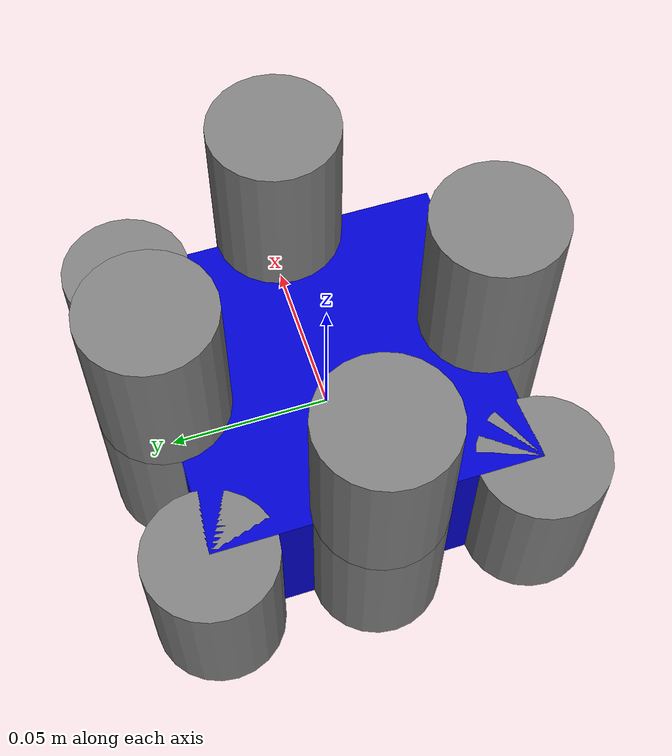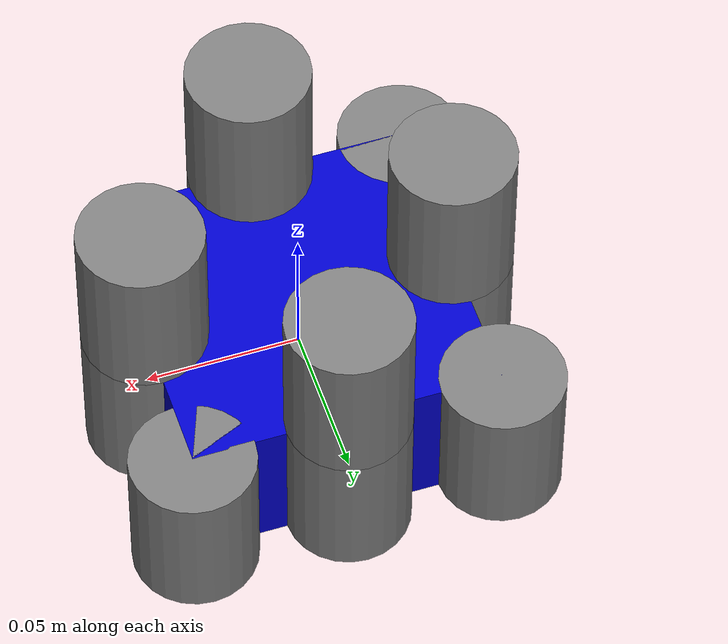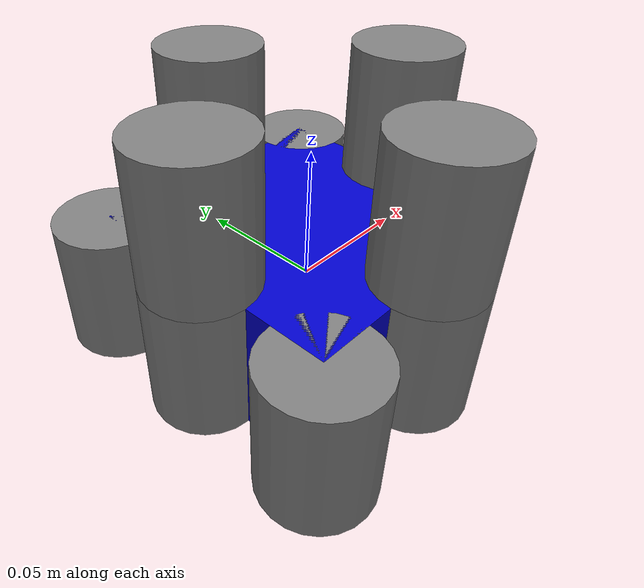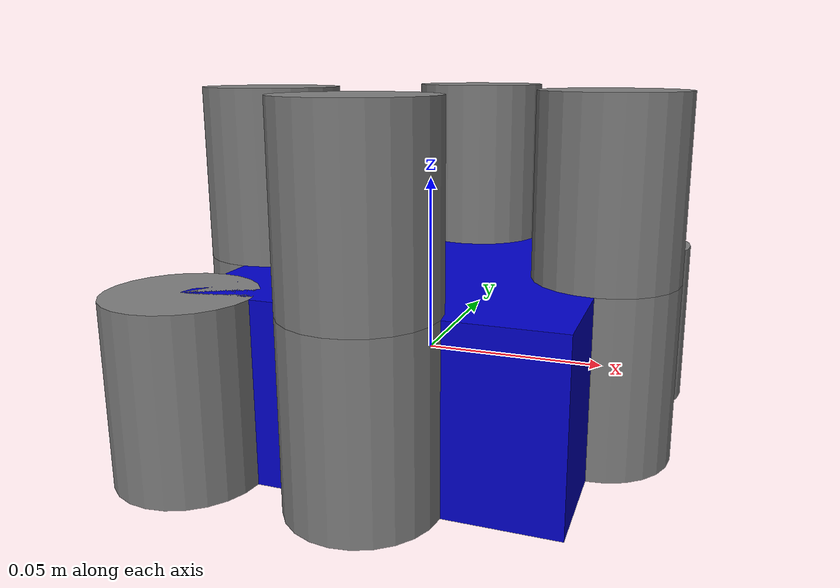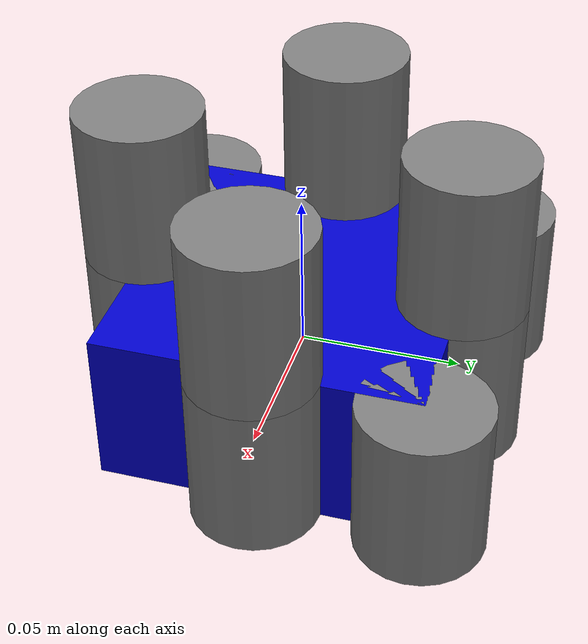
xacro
<?xml version="1.0"?>
<robot xmlns:xacro="http://www.ros.org/wiki/xacro" name="hybrid_robot">

  <!-- Define servo joint names and IDs -->
  <xacro:property name="servo_1_id" value="1" />
  <xacro:property name="servo_2_id" value="2" />
  <xacro:property name="servo_3_id" value="3" />
  <xacro:property name="servo_4_id" value="4" />
  <xacro:property name="servo_5_id" value="5" />
  <xacro:property name="servo_6_id" value="6" />
  <xacro:property name="servo_7_id" value="7" />
  <xacro:property name="servo_8_id" value="8" />
  <xacro:property name="servo_9_id" value="9" />
  <xacro:property name="servo_10_id" value="10" />
  <xacro:property name="servo_11_id" value="11" />
  <xacro:property name="servo_12_id" value="12" />

  <!-- Base link -->
  <link name="base_link">
    <visual>
      <geometry>
        <box size="0.1 0.1 0.05"/>
      </geometry>
      <material name="blue">
        <color rgba="0 0 0.8 1"/>
      </material>
    </visual>
  </link>

  <!-- Servo 1 link and joint (Position) -->
  <link name="servo_link_1">
    <visual>
      <geometry>
        <cylinder radius="0.02" length="0.05"/>
      </geometry>
      <material name="gray">
        <color rgba="0.5 0.5 0.5 1"/>
      </material>
    </visual>
  </link>

  <joint name="servo_joint_1" type="revolute">
    <parent link="base_link"/>
    <child link="servo_link_1"/>
    <origin xyz="0.05 0 0" rpy="0 0 0"/>
    <axis xyz="0 0 1"/>
    <limit lower="-3.14" upper="3.14" effort="10" velocity="5"/>
  </joint>

  <!-- Servo 2 link and joint (Position) -->
  <link name="servo_link_2">
    <visual>
      <geometry>
        <cylinder radius="0.02" length="0.05"/>
      </geometry>
      <material name="gray">
        <color rgba="0.5 0.5 0.5 1"/>
      </material>
    </visual>
  </link>

  <joint name="servo_joint_2" type="revolute">
    <parent link="base_link"/>
    <child link="servo_link_2"/>
    <origin xyz="0 0.05 0" rpy="0 0 0"/>
    <axis xyz="0 0 1"/>
    <limit lower="-3.14" upper="3.14" effort="10" velocity="5"/>
  </joint>

  <!-- Servo 3 link and joint (Velocity) -->
  <link name="servo_link_3">
    <visual>
      <geometry>
        <cylinder radius="0.02" length="0.05"/>
      </geometry>
      <material name="gray">
        <color rgba="0.5 0.5 0.5 1"/>
      </material>
    </visual>
  </link>

  <joint name="servo_joint_3" type="revolute">
    <parent link="base_link"/>
    <child link="servo_link_3"/>
    <origin xyz="-0.05 0 0" rpy="0 0 0"/>
    <axis xyz="0 0 1"/>
    <limit lower="-3.14" upper="3.14" effort="10" velocity="5"/>
  </joint>

  <!-- Servo 4 link and joint (Position) -->
  <link name="servo_link_4">
    <visual>
      <geometry>
        <cylinder radius="0.02" length="0.05"/>
      </geometry>
      <material name="gray">
        <color rgba="0.5 0.5 0.5 1"/>
      </material>
    </visual>
  </link>

  <joint name="servo_joint_4" type="revolute">
    <parent link="base_link"/>
    <child link="servo_link_4"/>
    <origin xyz="0 -0.05 0.05" rpy="0 0 0"/>
    <axis xyz="0 0 1"/>
    <limit lower="-3.14" upper="3.14" effort="10" velocity="5"/>
  </joint>

  <!-- Servo 5 link and joint (Position) -->
  <link name="servo_link_5">
    <visual>
      <geometry>
        <cylinder radius="0.02" length="0.05"/>
      </geometry>
      <material name="gray">
        <color rgba="0.5 0.5 0.5 1"/>
      </material>
    </visual>
  </link>

  <joint name="servo_joint_5" type="revolute">
    <parent link="base_link"/>
    <child link="servo_link_5"/>
    <origin xyz="0 0.05 0.05" rpy="0 0 0"/>
    <axis xyz="0 0 1"/>
    <limit lower="-3.14" upper="3.14" effort="10" velocity="5"/>
  </joint>

  <!-- Servo 6 link and joint (Velocity) -->
  <link name="servo_link_6">
    <visual>
      <geometry>
        <cylinder radius="0.02" length="0.05"/>
      </geometry>
      <material name="gray">
        <color rgba="0.5 0.5 0.5 1"/>
      </material>
    </visual>
  </link>

  <joint name="servo_joint_6" type="revolute">
    <parent link="base_link"/>
    <child link="servo_link_6"/>
    <origin xyz="0.05 0.05 0" rpy="0 0 0"/>
    <axis xyz="0 0 1"/>
    <limit lower="-3.14" upper="3.14" effort="10" velocity="5"/>
  </joint>

  <!-- Servo 7 link and joint (Position) -->
  <link name="servo_link_7">
    <visual>
      <geometry>
        <cylinder radius="0.02" length="0.05"/>
      </geometry>
      <material name="gray">
        <color rgba="0.5 0.5 0.5 1"/>
      </material>
    </visual>
  </link>

  <joint name="servo_joint_7" type="revolute">
    <parent link="base_link"/>
    <child link="servo_link_7"/>
    <origin xyz="0.05 0 0.05" rpy="0 0 0"/>
    <axis xyz="0 0 1"/>
    <limit lower="-3.14" upper="3.14" effort="10" velocity="5"/>
  </joint>

  <!-- Servo 8 link and joint (Position) -->
  <link name="servo_link_8">
    <visual>
      <geometry>
        <cylinder radius="0.02" length="0.05"/>
      </geometry>
      <material name="gray">
        <color rgba="0.5 0.5 0.5 1"/>
      </material>
    </visual>
  </link>

  <joint name="servo_joint_8" type="revolute">
    <parent link="base_link"/>
    <child link="servo_link_8"/>
    <origin xyz="0 0.05 0.05" rpy="0 0 0"/>
    <axis xyz="0 0 1"/>
    <limit lower="-3.14" upper="3.14" effort="10" velocity="5"/>
  </joint>

  <!-- Servo 9 link and joint (Velocity) -->
  <link name="servo_link_9">
    <visual>
      <geometry>
        <cylinder radius="0.02" length="0.05"/>
      </geometry>
      <material name="gray">
        <color rgba="0.5 0.5 0.5 1"/>
      </material>
    </visual>
  </link>

  <joint name="servo_joint_9" type="revolute">
    <parent link="base_link"/>
    <child link="servo_link_9"/>
    <origin xyz="0 -0.05 0" rpy="0 0 0"/>
    <axis xyz="0 0 -1"/>
    <limit lower="-3.14" upper="3.14" effort="10" velocity="5"/>
  </joint>

  <!-- Servo 10 link and joint (Position) -->
  <link name="servo_link_10">
    <visual>
      <geometry>
        <cylinder radius="0.02" length="0.05"/>
      </geometry>
      <material name="gray">
        <color rgba="0.5 0.5 0.5 1"/>
      </material>
    </visual>
  </link>

  <joint name="servo_joint_10" type="revolute">
    <parent link="base_link"/>
    <child link="servo_link_10"/>
    <origin xyz="-0.05 -0.05 0" rpy="0 0 0"/>
    <axis xyz="0 0 1"/>
    <limit lower="-3.14" upper="3.14" effort="10" velocity="5"/>
  </joint>

  <!-- Servo 11 link and joint (Position) -->
  <link name="servo_link_11">
    <visual>
      <geometry>
        <cylinder radius="0.02" length="0.05"/>
      </geometry>
      <material name="gray">
        <color rgba="0.5 0.5 0.5 1"/>
      </material>
    </visual>
  </link>

  <joint name="servo_joint_11" type="revolute">
    <parent link="base_link"/>
    <child link="servo_link_11"/>
    <origin xyz="-0.05 0 0.05" rpy="0 0 0"/>
    <axis xyz="0 0 1"/>
    <limit lower="-3.14" upper="3.14" effort="10" velocity="5"/>
  </joint>

  <!-- Servo 12 link and joint (Velocity) -->
  <link name="servo_link_12">
    <visual>
      <geometry>
        <cylinder radius="0.02" length="0.05"/>
      </geometry>
      <material name="gray">
        <color rgba="0.5 0.5 0.5 1"/>
      </material>
    </visual>
  </link>

  <joint name="servo_joint_12" type="revolute">
    <parent link="base_link"/>
    <child link="servo_link_12"/>
    <origin xyz="-0.05 0.05 0" rpy="0 0 0"/>
    <axis xyz="0 0 -1"/>
    <limit lower="-3.14" upper="3.14" effort="10" velocity="5"/>
  </joint>

  <!-- ROS 2 Control hardware interface -->
  <ros2_control name="ST3215HardwareSystem" type="system">
    <hardware>
      <plugin>ugv_motor_driver/ST3215HardwareInterface</plugin>
      <param name="serial_port">/dev/ttyUSB0</param>
      <param name="servo_ids">1,2,3,4,5,6,7,8,9,10,11,12</param>
    </hardware>

    <!-- Position control servos: 1, 2, 4, 5, 7, 8 -->
    <joint name="servo_joint_1">
      <command_interface name="position">
        <param name="min">-3.14</param>
        <param name="max">3.14</param>
      </command_interface>
      <state_interface name="position"/>
      <state_interface name="velocity"/>
      <state_interface name="effort"/>
    </joint>

    <joint name="servo_joint_2">
      <command_interface name="position">
        <param name="min">-3.14</param>
        <param name="max">3.14</param>
      </command_interface>
      <state_interface name="position"/>
      <state_interface name="velocity"/>
      <state_interface name="effort"/>
    </joint>

    <!-- Velocity control: servo 3 -->
    <joint name="servo_joint_3">
      <command_interface name="velocity">
        <param name="min">-255</param>
        <param name="max">255</param>
      </command_interface>
      <state_interface name="position"/>
      <state_interface name="velocity"/>
      <state_interface name="effort"/>
    </joint>

    <joint name="servo_joint_4">
      <command_interface name="position">
        <param name="min">-3.14</param>
        <param name="max">3.14</param>
      </command_interface>
      <state_interface name="position"/>
      <state_interface name="velocity"/>
      <state_interface name="effort"/>
    </joint>

    <joint name="servo_joint_5">
      <command_interface name="position">
        <param name="min">-3.14</param>
        <param name="max">3.14</param>
      </command_interface>
      <state_interface name="position"/>
      <state_interface name="velocity"/>
      <state_interface name="effort"/>
    </joint>

    <!-- Velocity control: servo 6 -->
    <joint name="servo_joint_6">
      <command_interface name="velocity">
        <param name="min">-255</param>
        <param name="max">255</param>
      </command_interface>
      <state_interface name="position"/>
      <state_interface name="velocity"/>
      <state_interface name="effort"/>
    </joint>

    <joint name="servo_joint_7">
      <command_interface name="position">
        <param name="min">-3.14</param>
        <param name="max">3.14</param>
      </command_interface>
      <state_interface name="position"/>
      <state_interface name="velocity"/>
      <state_interface name="effort"/>
    </joint>

    <joint name="servo_joint_8">
      <command_interface name="position">
        <param name="min">-3.14</param>
        <param name="max">3.14</param>
      </command_interface>
      <state_interface name="position"/>
      <state_interface name="velocity"/>
      <state_interface name="effort"/>
    </joint>

    <!-- Velocity control: servo 9 -->
    <joint name="servo_joint_9">
      <command_interface name="velocity">
        <param name="min">-255</param>
        <param name="max">255</param>
      </command_interface>
      <state_interface name="position"/>
      <state_interface name="velocity"/>
      <state_interface name="effort"/>
    </joint>

    <joint name="servo_joint_10">
      <command_interface name="position">
        <param name="min">-3.14</param>
        <param name="max">3.14</param>
      </command_interface>
      <state_interface name="position"/>
      <state_interface name="velocity"/>
      <state_interface name="effort"/>
    </joint>

    <joint name="servo_joint_11">
      <command_interface name="position">
        <param name="min">-3.14</param>
        <param name="max">3.14</param>
      </command_interface>
      <state_interface name="position"/>
      <state_interface name="velocity"/>
      <state_interface name="effort"/>
    </joint>

    <joint name="servo_joint_12">
      <command_interface name="velocity">
        <param name="min">-255</param>
        <param name="max">255</param>
      </command_interface>
      <state_interface name="position"/>
      <state_interface name="velocity"/>
      <state_interface name="effort"/>
    </joint>

  </ros2_control>

</robot>
